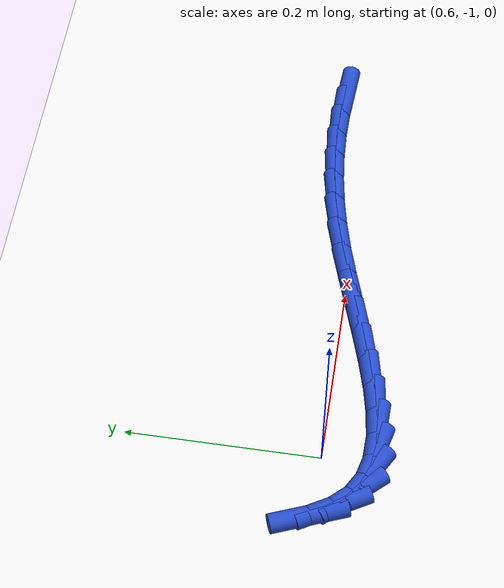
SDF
<sdf version="1.6">
 <world name="default">
  <model name="ground_plane">
   <static>1</static>
   <link name="link">
    <collision name="collision">
     <geometry><plane><normal>0 0 1</normal><size>100 100</size></plane></geometry>
     <surface><friction><ode><mu>100</mu><mu2>50</mu2></ode></friction></surface>
    </collision>
    <visual name="visual">
     <cast_shadows>0</cast_shadows>
     <geometry><plane><normal>0 0 1</normal><size>100 100</size></plane></geometry>
     <material>
      <script><uri>file://media/materials/scripts/gazebo.material</uri><name>Gazebo/WhiteGlow</name></script>
     </material>
    </visual>
   </link>
  </model>
  <model name="line">
   <link name="link_172">
    <pose>1.0682924797852016 -0.9679762079019383 0.01 0 1.57 -0.061032002196497515</pose>
    <collision name="collision">
     <geometry><cylinder><radius>0.01</radius><length>0.08</length></cylinder></geometry>
    </collision>
    <visual name="visual">
     <material>
      <script><name>Gazebo/Blue</name><uri>file://media/materials/scripts/gazebo.material</uri></script>
     </material>
     <geometry><cylinder><radius>0.01</radius><length>0.08</length></cylinder></geometry>
    </visual>
   </link>
   <link name="link_173">
    <pose>1.038805309149057 -0.9661743089821845 0.01 0 1.57 -0.008438370120807278</pose>
    <collision name="collision">
     <geometry><cylinder><radius>0.01</radius><length>0.08</length></cylinder></geometry>
    </collision>
    <visual name="visual">
     <material>
      <script><name>Gazebo/Blue</name><uri>file://media/materials/scripts/gazebo.material</uri></script>
     </material>
     <geometry><cylinder><radius>0.01</radius><length>0.08</length></cylinder></geometry>
    </visual>
   </link>
   <link name="link_174">
    <pose>1.0088810828138295 -0.9659217912911614 0.01 0 1.57 0.044853711319740336</pose>
    <collision name="collision">
     <geometry><cylinder><radius>0.01</radius><length>0.08</length></cylinder></geometry>
    </collision>
    <visual name="visual">
     <material>
      <script><name>Gazebo/Blue</name><uri>file://media/materials/scripts/gazebo.material</uri></script>
     </material>
     <geometry><cylinder><radius>0.01</radius><length>0.08</length></cylinder></geometry>
    </visual>
   </link>
   <link name="link_175">
    <pose>0.9784529336056902 -0.9672875227193276 0.01 0 1.57 0.0981658057153347</pose>
    <collision name="collision">
     <geometry><cylinder><radius>0.01</radius><length>0.08</length></cylinder></geometry>
    </collision>
    <visual name="visual">
     <material>
      <script><name>Gazebo/Blue</name><uri>file://media/materials/scripts/gazebo.material</uri></script>
     </material>
     <geometry><cylinder><radius>0.01</radius><length>0.08</length></cylinder></geometry>
    </visual>
   </link>
   <link name="link_176">
    <pose>0.9474539943508111 -0.9703403711571409 0.01 0 1.57 0.15084754509405027</pose>
    <collision name="collision">
     <geometry><cylinder><radius>0.01</radius><length>0.08</length></cylinder></geometry>
    </collision>
    <visual name="visual">
     <material>
      <script><name>Gazebo/Blue</name><uri>file://media/materials/scripts/gazebo.material</uri></script>
     </material>
     <geometry><cylinder><radius>0.01</radius><length>0.08</length></cylinder></geometry>
    </visual>
   </link>
   <link name="link_177">
    <pose>0.9158173978753638 -0.9751492044950603 0.01 0 1.57 0.2023100578837792</pose>
    <collision name="collision">
     <geometry><cylinder><radius>0.01</radius><length>0.08</length></cylinder></geometry>
    </collision>
    <visual name="visual">
     <material>
      <script><name>Gazebo/Blue</name><uri>file://media/materials/scripts/gazebo.material</uri></script>
     </material>
     <geometry><cylinder><radius>0.01</radius><length>0.08</length></cylinder></geometry>
    </visual>
   </link>
   <link name="link_178">
    <pose>0.8834762770055181 -0.9817828906235427 0.01 0 1.57 0.25184631865284207</pose>
    <collision name="collision">
     <geometry><cylinder><radius>0.01</radius><length>0.08</length></cylinder></geometry>
    </collision>
    <visual name="visual">
     <material>
      <script><name>Gazebo/Blue</name><uri>file://media/materials/scripts/gazebo.material</uri></script>
     </material>
     <geometry><cylinder><radius>0.01</radius><length>0.08</length></cylinder></geometry>
    </visual>
   </link>
   <link name="link_179">
    <pose>0.8503688827511233 -0.9903017393004233 0.01 0 1.57 0.2913295471556613</pose>
    <collision name="collision">
     <geometry><cylinder><radius>0.01</radius><length>0.08</length></cylinder></geometry>
    </collision>
    <visual name="visual">
     <material>
      <script><name>Gazebo/Blue</name><uri>file://media/materials/scripts/gazebo.material</uri></script>
     </material>
     <geometry><cylinder><radius>0.01</radius><length>0.08</length></cylinder></geometry>
    </visual>
   </link>
   <link name="link_180">
    <pose>0.8166436350360173 -1.0004146361157555 0.01 0 1.57 0.31225189957690747</pose>
    <collision name="collision">
     <geometry><cylinder><radius>0.01</radius><length>0.08</length></cylinder></geometry>
    </collision>
    <visual name="visual">
     <material>
      <script><name>Gazebo/Blue</name><uri>file://media/materials/scripts/gazebo.material</uri></script>
     </material>
     <geometry><cylinder><radius>0.01</radius><length>0.08</length></cylinder></geometry>
    </visual>
   </link>
   <link name="link_181">
    <pose>0.7827286324320112 -1.011362815025271 0.01 0 1.57 0.31567370445618476</pose>
    <collision name="collision">
     <geometry><cylinder><radius>0.01</radius><length>0.08</length></cylinder></geometry>
    </collision>
    <visual name="visual">
     <material>
      <script><name>Gazebo/Blue</name><uri>file://media/materials/scripts/gazebo.material</uri></script>
     </material>
     <geometry><cylinder><radius>0.01</radius><length>0.08</length></cylinder></geometry>
    </visual>
   </link>
   <link name="link_182">
    <pose>0.7490713504036511 -1.0223551098153587 0.01 0 1.57 0.30143875520186053</pose>
    <collision name="collision">
     <geometry><cylinder><radius>0.01</radius><length>0.08</length></cylinder></geometry>
    </collision>
    <visual name="visual">
     <material>
      <script><name>Gazebo/Blue</name><uri>file://media/materials/scripts/gazebo.material</uri></script>
     </material>
     <geometry><cylinder><radius>0.01</radius><length>0.08</length></cylinder></geometry>
    </visual>
   </link>
   <link name="link_183">
    <pose>0.7161192644154838 -1.0326003542724085 0.01 0 1.57 0.2672604255009147</pose>
    <collision name="collision">
     <geometry><cylinder><radius>0.01</radius><length>0.08</length></cylinder></geometry>
    </collision>
    <visual name="visual">
     <material>
      <script><name>Gazebo/Blue</name><uri>file://media/materials/scripts/gazebo.material</uri></script>
     </material>
     <geometry><cylinder><radius>0.01</radius><length>0.08</length></cylinder></geometry>
    </visual>
   </link>
   <link name="link_184">
    <pose>0.684319849932055 -1.0413073821828114 0.01 0 1.57 0.20812727908255604</pose>
    <collision name="collision">
     <geometry><cylinder><radius>0.01</radius><length>0.08</length></cylinder></geometry>
    </collision>
    <visual name="visual">
     <material>
      <script><name>Gazebo/Blue</name><uri>file://media/materials/scripts/gazebo.material</uri></script>
     </material>
     <geometry><cylinder><radius>0.01</radius><length>0.08</length></cylinder></geometry>
    </visual>
   </link>
   <link name="link_185">
    <pose>0.6541205824179124 -1.0476850273329557 0.01 0 1.57 0.11518611193309097</pose>
    <collision name="collision">
     <geometry><cylinder><radius>0.01</radius><length>0.08</length></cylinder></geometry>
    </collision>
    <visual name="visual">
     <material>
      <script><name>Gazebo/Blue</name><uri>file://media/materials/scripts/gazebo.material</uri></script>
     </material>
     <geometry><cylinder><radius>0.01</radius><length>0.08</length></cylinder></geometry>
    </visual>
   </link>
   <link name="link_186">
    <pose>0.6259689373376021 -1.0509421235092316 0.01 0 1.57 -0.025509161842982547</pose>
    <collision name="collision">
     <geometry><cylinder><radius>0.01</radius><length>0.08</length></cylinder></geometry>
    </collision>
    <visual name="visual">
     <material>
      <script><name>Gazebo/Blue</name><uri>file://media/materials/scripts/gazebo.material</uri></script>
     </material>
     <geometry><cylinder><radius>0.01</radius><length>0.08</length></cylinder></geometry>
    </visual>
   </link>
   <link name="link_187">
    <pose>0.6003123901556702 -1.0502875044980287 0.01 0 1.57 -0.23163440947251412</pose>
    <collision name="collision">
     <geometry><cylinder><radius>0.01</radius><length>0.08</length></cylinder></geometry>
    </collision>
    <visual name="visual">
     <material>
      <script><name>Gazebo/Blue</name><uri>file://media/materials/scripts/gazebo.material</uri></script>
     </material>
     <geometry><cylinder><radius>0.01</radius><length>0.08</length></cylinder></geometry>
    </visual>
   </link>
   <link name="link_188">
    <pose>0.5775984163366631 -1.0449300040857372 0.01 0 1.57 -0.5116315813522717</pose>
    <collision name="collision">
     <geometry><cylinder><radius>0.01</radius><length>0.08</length></cylinder></geometry>
    </collision>
    <visual name="visual">
     <material>
      <script><name>Gazebo/Blue</name><uri>file://media/materials/scripts/gazebo.material</uri></script>
     </material>
     <geometry><cylinder><radius>0.01</radius><length>0.08</length></cylinder></geometry>
    </visual>
   </link>
   <link name="link_189">
    <pose>0.5582739557986875 -1.0340792663833471 0.01 0 1.57 -0.8141029344425952</pose>
    <collision name="collision">
     <geometry><cylinder><radius>0.01</radius><length>0.08</length></cylinder></geometry>
    </collision>
    <visual name="visual">
     <material>
      <script><name>Gazebo/Blue</name><uri>file://media/materials/scripts/gazebo.material</uri></script>
     </material>
     <geometry><cylinder><radius>0.01</radius><length>0.08</length></cylinder></geometry>
    </visual>
   </link>
   <link name="link_190">
    <pose>0.542501900965377 -1.0173747220809028 0.01 0 1.57 -1.039305681670328</pose>
    <collision name="collision">
     <geometry><cylinder><radius>0.01</radius><length>0.08</length></cylinder></geometry>
    </collision>
    <visual name="visual">
     <material>
      <script><name>Gazebo/Blue</name><uri>file://media/materials/scripts/gazebo.material</uri></script>
     </material>
     <geometry><cylinder><radius>0.01</radius><length>0.08</length></cylinder></geometry>
    </visual>
   </link>
   <link name="link_191">
    <pose>0.5296948360708252 -0.9955910781736237 0.01 0 1.57 -1.1839546525128144</pose>
    <collision name="collision">
     <geometry><cylinder><radius>0.01</radius><length>0.08</length></cylinder></geometry>
    </collision>
    <visual name="visual">
     <material>
      <script><name>Gazebo/Blue</name><uri>file://media/materials/scripts/gazebo.material</uri></script>
     </material>
     <geometry><cylinder><radius>0.01</radius><length>0.08</length></cylinder></geometry>
    </visual>
   </link>
  </model>
 </world>
</sdf>
